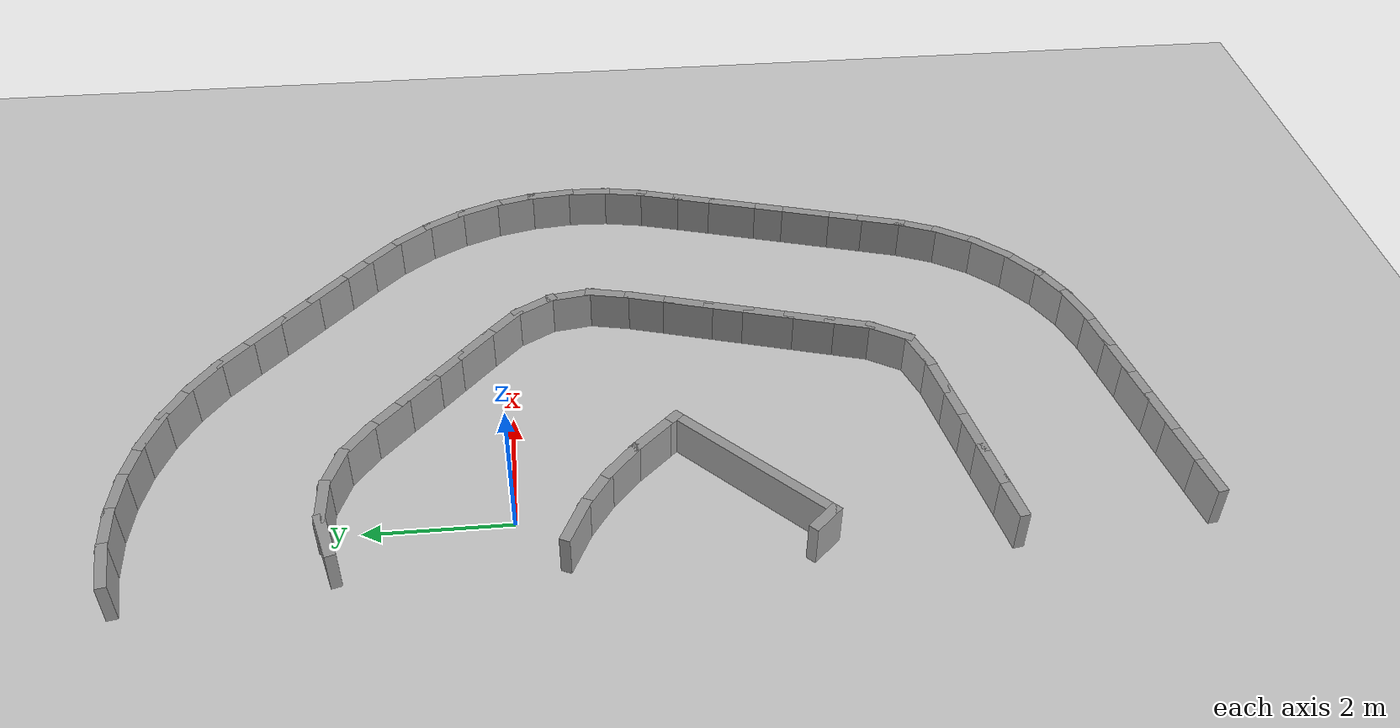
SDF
<sdf version="1.7">
 <world name="default">
  <model name="ground_plane">
   <static>1</static>
   <link name="link">
    <collision name="collision">
     <geometry><plane><normal>0 0 1</normal><size>100 100</size></plane></geometry>
     <surface><friction><ode><mu>100</mu><mu2>50</mu2></ode></friction></surface>
    </collision>
    <visual name="visual">
     <cast_shadows>0</cast_shadows>
     <geometry><plane><normal>0 0 1</normal><size>100 100</size></plane></geometry>
     <material>
      <script><uri>file://media/materials/scripts/gazebo.material</uri><name>Gazebo/Grey</name></script>
     </material>
    </visual>
   </link>
  </model>
  <model name="rand_turn_10">
   <link name="Wall_13">
    <collision name="Wall_13_Collision">
     <geometry><box><size>0.7496 0.1500 0.6000</size></box></geometry>
     <pose>0 0 0.3000 0 -0 0</pose>
    </collision>
    <visual name="Wall_13_Visual">
     <pose>0 0 0.3000 0 -0 0</pose>
     <geometry><box><size>0.7496 0.1500 0.6000</size></box></geometry>
     <material>
      <script><uri>file://media/materials/scripts/gazebo.material</uri><name>Gazebo/Grey</name></script>
      <ambient>1 1 1 1</ambient>
     </material>
    </visual>
    <pose>-0.7616 5.0270 0 0 -0 0.17493</pose>
   </link>
   <link name="Wall_14">
    <collision name="Wall_14_Collision">
     <geometry><box><size>0.7495 0.1500 0.6000</size></box></geometry>
     <pose>0 0 0.3000 0 -0 0</pose>
    </collision>
    <visual name="Wall_14_Visual">
     <pose>0 0 0.3000 0 -0 0</pose>
     <geometry><box><size>0.7495 0.1500 0.6000</size></box></geometry>
     <material>
      <script><uri>file://media/materials/scripts/gazebo.material</uri><name>Gazebo/Grey</name></script>
      <ambient>1 1 1 1</ambient>
     </material>
    </visual>
    <pose>-0.1669 5.0926 0 0 -0 0.04497</pose>
   </link>
   <link name="Wall_15">
    <collision name="Wall_15_Collision">
     <geometry><box><size>0.7495 0.1500 0.6000</size></box></geometry>
     <pose>0 0 0.3000 0 -0 0</pose>
    </collision>
    <visual name="Wall_15_Visual">
     <pose>0 0 0.3000 0 -0 0</pose>
     <geometry><box><size>0.7495 0.1500 0.6000</size></box></geometry>
     <material>
      <script><uri>file://media/materials/scripts/gazebo.material</uri><name>Gazebo/Grey</name></script>
      <ambient>1 1 1 1</ambient>
     </material>
    </visual>
    <pose>0.4313 5.0808 0 0 -0 -0.08451</pose>
   </link>
   <link name="Wall_16">
    <collision name="Wall_16_Collision">
     <geometry><box><size>0.7496 0.1500 0.6000</size></box></geometry>
     <pose>0 0 0.3000 0 -0 0</pose>
    </collision>
    <visual name="Wall_16_Visual">
     <pose>0 0 0.3000 0 -0 0</pose>
     <geometry><box><size>0.7496 0.1500 0.6000</size></box></geometry>
     <material>
      <script><uri>file://media/materials/scripts/gazebo.material</uri><name>Gazebo/Grey</name></script>
      <ambient>1 1 1 1</ambient>
     </material>
    </visual>
    <pose>1.0229 4.9918 0 0 -0 -0.21422</pose>
   </link>
   <link name="Wall_17">
    <collision name="Wall_17_Collision">
     <geometry><box><size>0.7496 0.1500 0.6000</size></box></geometry>
     <pose>0 0 0.3000 0 -0 0</pose>
    </collision>
    <visual name="Wall_17_Visual">
     <pose>0 0 0.3000 0 -0 0</pose>
     <geometry><box><size>0.7496 0.1500 0.6000</size></box></geometry>
     <material>
      <script><uri>file://media/materials/scripts/gazebo.material</uri><name>Gazebo/Grey</name></script>
      <ambient>1 1 1 1</ambient>
     </material>
    </visual>
    <pose>1.5979 4.8265 0 0 -0 -0.34542</pose>
   </link>
   <link name="Wall_18">
    <collision name="Wall_18_Collision">
     <geometry><box><size>0.7495 0.1500 0.6000</size></box></geometry>
     <pose>0 0 0.3000 0 -0 0</pose>
    </collision>
    <visual name="Wall_18_Visual">
     <pose>0 0 0.3000 0 -0 0</pose>
     <geometry><box><size>0.7495 0.1500 0.6000</size></box></geometry>
     <material>
      <script><uri>file://media/materials/scripts/gazebo.material</uri><name>Gazebo/Grey</name></script>
      <ambient>1 1 1 1</ambient>
     </material>
    </visual>
    <pose>2.1466 4.5880 0 0 -0 -0.47489</pose>
   </link>
   <link name="Wall_19">
    <collision name="Wall_19_Collision">
     <geometry><box><size>0.7496 0.1500 0.6000</size></box></geometry>
     <pose>0 0 0.3000 0 -0 0</pose>
    </collision>
    <visual name="Wall_19_Visual">
     <pose>0 0 0.3000 0 -0 0</pose>
     <geometry><box><size>0.7496 0.1500 0.6000</size></box></geometry>
     <material>
      <script><uri>file://media/materials/scripts/gazebo.material</uri><name>Gazebo/Grey</name></script>
      <ambient>1 1 1 1</ambient>
     </material>
    </visual>
    <pose>2.6599 4.2806 0 0 -0 -0.60436</pose>
   </link>
   <link name="Wall_20">
    <collision name="Wall_20_Collision">
     <geometry><box><size>0.7499 0.1500 0.6000</size></box></geometry>
     <pose>0 0 0.3000 0 -0 0</pose>
    </collision>
    <visual name="Wall_20_Visual">
     <pose>0 0 0.3000 0 -0 0</pose>
     <geometry><box><size>0.7499 0.1500 0.6000</size></box></geometry>
     <material>
      <script><uri>file://media/materials/scripts/gazebo.material</uri><name>Gazebo/Grey</name></script>
      <ambient>1 1 1 1</ambient>
     </material>
    </visual>
    <pose>3.1338 3.9145 0 0 -0 -0.71109</pose>
   </link>
   <link name="Wall_21">
    <collision name="Wall_21_Collision">
     <geometry><box><size>0.7500 0.1500 0.6000</size></box></geometry>
     <pose>0 0 0.3000 0 -0 0</pose>
    </collision>
    <visual name="Wall_21_Visual">
     <pose>0 0 0.3000 0 -0 0</pose>
     <geometry><box><size>0.7500 0.1500 0.6000</size></box></geometry>
     <material>
      <script><uri>file://media/materials/scripts/gazebo.material</uri><name>Gazebo/Grey</name></script>
      <ambient>1 1 1 1</ambient>
     </material>
    </visual>
    <pose>3.5865 3.5207 0 0 -0 -0.72078</pose>
   </link>
   <link name="Wall_22">
    <collision name="Wall_22_Collision">
     <geometry><box><size>0.7500 0.1500 0.6000</size></box></geometry>
     <pose>0 0 0.3000 0 -0 0</pose>
    </collision>
    <visual name="Wall_22_Visual">
     <pose>0 0 0.3000 0 -0 0</pose>
     <geometry><box><size>0.7500 0.1500 0.6000</size></box></geometry>
     <material>
      <script><uri>file://media/materials/scripts/gazebo.material</uri><name>Gazebo/Grey</name></script>
      <ambient>1 1 1 1</ambient>
     </material>
    </visual>
    <pose>4.0372 3.1247 0 0 -0 -0.72078</pose>
   </link>
   <link name="Wall_23">
    <collision name="Wall_23_Collision">
     <geometry><box><size>0.7500 0.1500 0.6000</size></box></geometry>
     <pose>0 0 0.3000 0 -0 0</pose>
    </collision>
    <visual name="Wall_23_Visual">
     <pose>0 0 0.3000 0 -0 0</pose>
     <geometry><box><size>0.7500 0.1500 0.6000</size></box></geometry>
     <material>
      <script><uri>file://media/materials/scripts/gazebo.material</uri><name>Gazebo/Grey</name></script>
      <ambient>1 1 1 1</ambient>
     </material>
    </visual>
    <pose>4.4880 2.7287 0 0 -0 -0.72078</pose>
   </link>
   <link name="Wall_24">
    <collision name="Wall_24_Collision">
     <geometry><box><size>0.7500 0.1500 0.6000</size></box></geometry>
     <pose>0 0 0.3000 0 -0 0</pose>
    </collision>
    <visual name="Wall_24_Visual">
     <pose>0 0 0.3000 0 -0 0</pose>
     <geometry><box><size>0.7500 0.1500 0.6000</size></box></geometry>
     <material>
      <script><uri>file://media/materials/scripts/gazebo.material</uri><name>Gazebo/Grey</name></script>
      <ambient>1 1 1 1</ambient>
     </material>
    </visual>
    <pose>4.9388 2.3327 0 0 -0 -0.72078</pose>
   </link>
   <link name="Wall_25">
    <collision name="Wall_25_Collision">
     <geometry><box><size>0.7497 0.1500 0.6000</size></box></geometry>
     <pose>0 0 0.3000 0 -0 0</pose>
    </collision>
    <visual name="Wall_25_Visual">
     <pose>0 0 0.3000 0 -0 0</pose>
     <geometry><box><size>0.7497 0.1500 0.6000</size></box></geometry>
     <material>
      <script><uri>file://media/materials/scripts/gazebo.material</uri><name>Gazebo/Grey</name></script>
      <ambient>1 1 1 1</ambient>
     </material>
    </visual>
    <pose>5.3823 1.9290 0 0 -0 -0.75607</pose>
   </link>
   <link name="Wall_26">
    <collision name="Wall_26_Collision">
     <geometry><box><size>0.7495 0.1500 0.6000</size></box></geometry>
     <pose>0 0 0.3000 0 -0 0</pose>
    </collision>
    <visual name="Wall_26_Visual">
     <pose>0 0 0.3000 0 -0 0</pose>
     <geometry><box><size>0.7495 0.1500 0.6000</size></box></geometry>
     <material>
      <script><uri>file://media/materials/scripts/gazebo.material</uri><name>Gazebo/Grey</name></script>
      <ambient>1 1 1 1</ambient>
     </material>
    </visual>
    <pose>5.7887 1.4901 0 0 -0 -0.89167</pose>
   </link>
   <link name="Wall_27">
    <collision name="Wall_27_Collision">
     <geometry><box><size>0.7495 0.1500 0.6000</size></box></geometry>
     <pose>0 0 0.3000 0 -0 0</pose>
    </collision>
    <visual name="Wall_27_Visual">
     <pose>0 0 0.3000 0 -0 0</pose>
     <geometry><box><size>0.7495 0.1500 0.6000</size></box></geometry>
     <material>
      <script><uri>file://media/materials/scripts/gazebo.material</uri><name>Gazebo/Grey</name></script>
      <ambient>1 1 1 1</ambient>
     </material>
    </visual>
    <pose>6.1300 0.9991 0 0 -0 -1.03518</pose>
   </link>
   <link name="Wall_28">
    <collision name="Wall_28_Collision">
     <geometry><box><size>0.7495 0.1500 0.6000</size></box></geometry>
     <pose>0 0 0.3000 0 -0 0</pose>
    </collision>
    <visual name="Wall_28_Visual">
     <pose>0 0 0.3000 0 -0 0</pose>
     <geometry><box><size>0.7495 0.1500 0.6000</size></box></geometry>
     <material>
      <script><uri>file://media/materials/scripts/gazebo.material</uri><name>Gazebo/Grey</name></script>
      <ambient>1 1 1 1</ambient>
     </material>
    </visual>
    <pose>6.3976 0.4644 0 0 -0 -1.17840</pose>
   </link>
   <link name="Wall_29">
    <collision name="Wall_29_Collision">
     <geometry><box><size>0.7495 0.1500 0.6000</size></box></geometry>
     <pose>0 0 0.3000 0 -0 0</pose>
    </collision>
    <visual name="Wall_29_Visual">
     <pose>0 0 0.3000 0 -0 0</pose>
     <geometry><box><size>0.7495 0.1500 0.6000</size></box></geometry>
     <material>
      <script><uri>file://media/materials/scripts/gazebo.material</uri><name>Gazebo/Grey</name></script>
      <ambient>1 1 1 1</ambient>
     </material>
    </visual>
    <pose>6.5862 -0.1031 0 0 -0 -1.32133</pose>
   </link>
   <link name="Wall_30">
    <collision name="Wall_30_Collision">
     <geometry><box><size>0.7494 0.1500 0.6000</size></box></geometry>
     <pose>0 0 0.3000 0 -0 0</pose>
    </collision>
    <visual name="Wall_30_Visual">
     <pose>0 0 0.3000 0 -0 0</pose>
     <geometry><box><size>0.7494 0.1500 0.6000</size></box></geometry>
     <material>
      <script><uri>file://media/materials/scripts/gazebo.material</uri><name>Gazebo/Grey</name></script>
      <ambient>1 1 1 1</ambient>
     </material>
    </visual>
    <pose>6.6921 -0.6915 0 0 -0 -1.46426</pose>
   </link>
   <link name="Wall_31">
    <collision name="Wall_31_Collision">
     <geometry><box><size>0.7494 0.1500 0.6000</size></box></geometry>
     <pose>0 0 0.3000 0 -0 0</pose>
    </collision>
    <visual name="Wall_31_Visual">
     <pose>0 0 0.3000 0 -0 0</pose>
     <geometry><box><size>0.7494 0.1500 0.6000</size></box></geometry>
     <material>
      <script><uri>file://media/materials/scripts/gazebo.material</uri><name>Gazebo/Grey</name></script>
      <ambient>1 1 1 1</ambient>
     </material>
    </visual>
    <pose>6.7131 -1.2891 0 0 -0 -1.60719</pose>
   </link>
   <link name="Wall_32">
    <collision name="Wall_32_Collision">
     <geometry><box><size>0.7494 0.1500 0.6000</size></box></geometry>
     <pose>0 0 0.3000 0 -0 0</pose>
    </collision>
    <visual name="Wall_32_Visual">
     <pose>0 0 0.3000 0 -0 0</pose>
     <geometry><box><size>0.7494 0.1500 0.6000</size></box></geometry>
     <material>
      <script><uri>file://media/materials/scripts/gazebo.material</uri><name>Gazebo/Grey</name></script>
      <ambient>1 1 1 1</ambient>
     </material>
    </visual>
    <pose>6.6487 -1.8835 0 0 -0 -1.75019</pose>
   </link>
   <link name="Wall_33">
    <collision name="Wall_33_Collision">
     <geometry><box><size>0.7500 0.1500 0.6000</size></box></geometry>
     <pose>0 0 0.3000 0 -0 0</pose>
    </collision>
    <visual name="Wall_33_Visual">
     <pose>0 0 0.3000 0 -0 0</pose>
     <geometry><box><size>0.7500 0.1500 0.6000</size></box></geometry>
     <material>
      <script><uri>file://media/materials/scripts/gazebo.material</uri><name>Gazebo/Grey</name></script>
      <ambient>1 1 1 1</ambient>
     </material>
    </visual>
    <pose>6.5111 -2.4663 0 0 -0 -1.85487</pose>
   </link>
   <link name="Wall_34">
    <collision name="Wall_34_Collision">
     <geometry><box><size>0.7500 0.1500 0.6000</size></box></geometry>
     <pose>0 0 0.3000 0 -0 0</pose>
    </collision>
    <visual name="Wall_34_Visual">
     <pose>0 0 0.3000 0 -0 0</pose>
     <geometry><box><size>0.7500 0.1500 0.6000</size></box></geometry>
     <material>
      <script><uri>file://media/materials/scripts/gazebo.material</uri><name>Gazebo/Grey</name></script>
      <ambient>1 1 1 1</ambient>
     </material>
    </visual>
    <pose>6.3416 -3.0419 0 0 -0 -1.85970</pose>
   </link>
   <link name="Wall_35">
    <collision name="Wall_35_Collision">
     <geometry><box><size>0.7500 0.1500 0.6000</size></box></geometry>
     <pose>0 0 0.3000 0 -0 0</pose>
    </collision>
    <visual name="Wall_35_Visual">
     <pose>0 0 0.3000 0 -0 0</pose>
     <geometry><box><size>0.7500 0.1500 0.6000</size></box></geometry>
     <material>
      <script><uri>file://media/materials/scripts/gazebo.material</uri><name>Gazebo/Grey</name></script>
      <ambient>1 1 1 1</ambient>
     </material>
    </visual>
    <pose>6.1706 -3.6170 0 0 -0 -1.85970</pose>
   </link>
   <link name="Wall_36">
    <collision name="Wall_36_Collision">
     <geometry><box><size>0.7500 0.1500 0.6000</size></box></geometry>
     <pose>0 0 0.3000 0 -0 0</pose>
    </collision>
    <visual name="Wall_36_Visual">
     <pose>0 0 0.3000 0 -0 0</pose>
     <geometry><box><size>0.7500 0.1500 0.6000</size></box></geometry>
     <material>
      <script><uri>file://media/materials/scripts/gazebo.material</uri><name>Gazebo/Grey</name></script>
      <ambient>1 1 1 1</ambient>
     </material>
    </visual>
    <pose>5.9997 -4.1921 0 0 -0 -1.85970</pose>
   </link>
   <link name="Wall_37">
    <collision name="Wall_37_Collision">
     <geometry><box><size>0.7500 0.1500 0.6000</size></box></geometry>
     <pose>0 0 0.3000 0 -0 0</pose>
    </collision>
    <visual name="Wall_37_Visual">
     <pose>0 0 0.3000 0 -0 0</pose>
     <geometry><box><size>0.7500 0.1500 0.6000</size></box></geometry>
     <material>
      <script><uri>file://media/materials/scripts/gazebo.material</uri><name>Gazebo/Grey</name></script>
      <ambient>1 1 1 1</ambient>
     </material>
    </visual>
    <pose>5.8287 -4.7673 0 0 -0 -1.85970</pose>
   </link>
   <link name="Wall_38">
    <collision name="Wall_38_Collision">
     <geometry><box><size>0.7500 0.1500 0.6000</size></box></geometry>
     <pose>0 0 0.3000 0 -0 0</pose>
    </collision>
    <visual name="Wall_38_Visual">
     <pose>0 0 0.3000 0 -0 0</pose>
     <geometry><box><size>0.7500 0.1500 0.6000</size></box></geometry>
     <material>
      <script><uri>file://media/materials/scripts/gazebo.material</uri><name>Gazebo/Grey</name></script>
      <ambient>1 1 1 1</ambient>
     </material>
    </visual>
    <pose>5.6578 -5.3424 0 0 -0 -1.85970</pose>
   </link>
   <link name="Wall_39">
    <collision name="Wall_39_Collision">
     <geometry><box><size>0.7500 0.1500 0.6000</size></box></geometry>
     <pose>0 0 0.3000 0 -0 0</pose>
    </collision>
    <visual name="Wall_39_Visual">
     <pose>0 0 0.3000 0 -0 0</pose>
     <geometry><box><size>0.7500 0.1500 0.6000</size></box></geometry>
     <material>
      <script><uri>file://media/materials/scripts/gazebo.material</uri><name>Gazebo/Grey</name></script>
      <ambient>1 1 1 1</ambient>
     </material>
    </visual>
    <pose>5.4857 -5.9172 0 0 -0 -1.86383</pose>
   </link>
   <link name="Wall_40">
    <collision name="Wall_40_Collision">
     <geometry><box><size>0.7491 0.1500 0.6000</size></box></geometry>
     <pose>0 0 0.3000 0 -0 0</pose>
    </collision>
    <visual name="Wall_40_Visual">
     <pose>0 0 0.3000 0 -0 0</pose>
     <geometry><box><size>0.7491 0.1500 0.6000</size></box></geometry>
     <material>
      <script><uri>file://media/materials/scripts/gazebo.material</uri><name>Gazebo/Grey</name></script>
      <ambient>1 1 1 1</ambient>
     </material>
    </visual>
    <pose>5.2800 -6.4793 0 0 -0 -1.97924</pose>
   </link>
   <link name="Wall_41">
    <collision name="Wall_41_Collision">
     <geometry><box><size>0.7492 0.1500 0.6000</size></box></geometry>
     <pose>0 0 0.3000 0 -0 0</pose>
    </collision>
    <visual name="Wall_41_Visual">
     <pose>0 0 0.3000 0 -0 0</pose>
     <geometry><box><size>0.7492 0.1500 0.6000</size></box></geometry>
     <material>
      <script><uri>file://media/materials/scripts/gazebo.material</uri><name>Gazebo/Grey</name></script>
      <ambient>1 1 1 1</ambient>
     </material>
    </visual>
    <pose>4.9963 -7.0044 0 0 -0 -2.15323</pose>
   </link>
   <link name="Wall_42">
    <collision name="Wall_42_Collision">
     <geometry><box><size>0.7492 0.1500 0.6000</size></box></geometry>
     <pose>0 0 0.3000 0 -0 0</pose>
    </collision>
    <visual name="Wall_42_Visual">
     <pose>0 0 0.3000 0 -0 0</pose>
     <geometry><box><size>0.7492 0.1500 0.6000</size></box></geometry>
     <material>
      <script><uri>file://media/materials/scripts/gazebo.material</uri><name>Gazebo/Grey</name></script>
      <ambient>1 1 1 1</ambient>
     </material>
    </visual>
    <pose>4.6249 -7.4716 0 0 -0 -2.33162</pose>
   </link>
   <link name="Wall_43">
    <collision name="Wall_43_Collision">
     <geometry><box><size>0.7491 0.1500 0.6000</size></box></geometry>
     <pose>0 0 0.3000 0 -0 0</pose>
    </collision>
    <visual name="Wall_43_Visual">
     <pose>0 0 0.3000 0 -0 0</pose>
     <geometry><box><size>0.7491 0.1500 0.6000</size></box></geometry>
     <material>
      <script><uri>file://media/materials/scripts/gazebo.material</uri><name>Gazebo/Grey</name></script>
      <ambient>1 1 1 1</ambient>
     </material>
    </visual>
    <pose>4.1773 -7.8665 0 0 -0 -2.50584</pose>
   </link>
   <link name="Wall_44">
    <collision name="Wall_44_Collision">
     <geometry><box><size>0.7492 0.1500 0.6000</size></box></geometry>
     <pose>0 0 0.3000 0 -0 0</pose>
    </collision>
    <visual name="Wall_44_Visual">
     <pose>0 0 0.3000 0 -0 0</pose>
     <geometry><box><size>0.7492 0.1500 0.6000</size></box></geometry>
     <material>
      <script><uri>file://media/materials/scripts/gazebo.material</uri><name>Gazebo/Grey</name></script>
      <ambient>1 1 1 1</ambient>
     </material>
    </visual>
    <pose>3.6680 -8.1778 0 0 -0 -2.68001</pose>
   </link>
   <link name="Wall_45">
    <collision name="Wall_45_Collision">
     <geometry><box><size>0.7492 0.1500 0.6000</size></box></geometry>
     <pose>0 0 0.3000 0 -0 0</pose>
    </collision>
    <visual name="Wall_45_Visual">
     <pose>0 0 0.3000 0 -0 0</pose>
     <geometry><box><size>0.7492 0.1500 0.6000</size></box></geometry>
     <material>
      <script><uri>file://media/materials/scripts/gazebo.material</uri><name>Gazebo/Grey</name></script>
      <ambient>1 1 1 1</ambient>
     </material>
    </visual>
    <pose>3.1121 -8.3951 0 0 -0 -2.85792</pose>
   </link>
   <link name="Wall_46">
    <collision name="Wall_46_Collision">
     <geometry><box><size>0.7500 0.1500 0.6000</size></box></geometry>
     <pose>0 0 0.3000 0 -0 0</pose>
    </collision>
    <visual name="Wall_46_Visual">
     <pose>0 0 0.3000 0 -0 0</pose>
     <geometry><box><size>0.7500 0.1500 0.6000</size></box></geometry>
     <material>
      <script><uri>file://media/materials/scripts/gazebo.material</uri><name>Gazebo/Grey</name></script>
      <ambient>1 1 1 1</ambient>
     </material>
    </visual>
    <pose>2.5292 -8.5320 0 0 -0 -2.96390</pose>
   </link>
   <link name="Wall_47">
    <collision name="Wall_47_Collision">
     <geometry><box><size>0.7500 0.1500 0.6000</size></box></geometry>
     <pose>0 0 0.3000 0 -0 0</pose>
    </collision>
    <visual name="Wall_47_Visual">
     <pose>0 0 0.3000 0 -0 0</pose>
     <geometry><box><size>0.7500 0.1500 0.6000</size></box></geometry>
     <material>
      <script><uri>file://media/materials/scripts/gazebo.material</uri><name>Gazebo/Grey</name></script>
      <ambient>1 1 1 1</ambient>
     </material>
    </visual>
    <pose>1.9385 -8.6374 0 0 -0 -2.96626</pose>
   </link>
   <link name="Wall_48">
    <collision name="Wall_48_Collision">
     <geometry><box><size>0.7500 0.1500 0.6000</size></box></geometry>
     <pose>0 0 0.3000 0 -0 0</pose>
    </collision>
    <visual name="Wall_48_Visual">
     <pose>0 0 0.3000 0 -0 0</pose>
     <geometry><box><size>0.7500 0.1500 0.6000</size></box></geometry>
     <material>
      <script><uri>file://media/materials/scripts/gazebo.material</uri><name>Gazebo/Grey</name></script>
      <ambient>1 1 1 1</ambient>
     </material>
    </visual>
    <pose>1.3477 -8.7420 0 0 -0 -2.96626</pose>
   </link>
   <link name="Wall_49">
    <collision name="Wall_49_Collision">
     <geometry><box><size>0.7500 0.1500 0.6000</size></box></geometry>
     <pose>0 0 0.3000 0 -0 0</pose>
    </collision>
    <visual name="Wall_49_Visual">
     <pose>0 0 0.3000 0 -0 0</pose>
     <geometry><box><size>0.7500 0.1500 0.6000</size></box></geometry>
     <material>
      <script><uri>file://media/materials/scripts/gazebo.material</uri><name>Gazebo/Grey</name></script>
      <ambient>1 1 1 1</ambient>
     </material>
    </visual>
    <pose>0.7569 -8.8467 0 0 -0 -2.96626</pose>
   </link>
   <link name="Wall_50">
    <collision name="Wall_50_Collision">
     <geometry><box><size>0.7500 0.1500 0.6000</size></box></geometry>
     <pose>0 0 0.3000 0 -0 0</pose>
    </collision>
    <visual name="Wall_50_Visual">
     <pose>0 0 0.3000 0 -0 0</pose>
     <geometry><box><size>0.7500 0.1500 0.6000</size></box></geometry>
     <material>
      <script><uri>file://media/materials/scripts/gazebo.material</uri><name>Gazebo/Grey</name></script>
      <ambient>1 1 1 1</ambient>
     </material>
    </visual>
    <pose>0.1661 -8.9513 0 0 -0 -2.96626</pose>
   </link>
   <link name="Wall_51">
    <collision name="Wall_51_Collision">
     <geometry><box><size>0.7500 0.1500 0.6000</size></box></geometry>
     <pose>0 0 0.3000 0 -0 0</pose>
    </collision>
    <visual name="Wall_51_Visual">
     <pose>0 0 0.3000 0 -0 0</pose>
     <geometry><box><size>0.7500 0.1500 0.6000</size></box></geometry>
     <material>
      <script><uri>file://media/materials/scripts/gazebo.material</uri><name>Gazebo/Grey</name></script>
      <ambient>1 1 1 1</ambient>
     </material>
    </visual>
    <pose>-0.4247 -9.0560 0 0 -0 -2.96626</pose>
   </link>
   <link name="Wall_80">
    <collision name="Wall_80_Collision">
     <geometry><box><size>0.7495 0.1500 0.6000</size></box></geometry>
     <pose>0 0 0.3000 0 -0 0</pose>
    </collision>
    <visual name="Wall_80_Visual">
     <pose>0 0 0.3000 0 -0 0</pose>
     <geometry><box><size>0.7495 0.1500 0.6000</size></box></geometry>
     <material>
      <script><uri>file://media/materials/scripts/gazebo.material</uri><name>Gazebo/Grey</name></script>
      <ambient>1 1 1 1</ambient>
     </material>
    </visual>
    <pose>-0.5291 -0.7930 0 0 -0 -0.43776</pose>
   </link>
   <link name="Wall_81">
    <collision name="Wall_81_Collision">
     <geometry><box><size>0.7495 0.1500 0.6000</size></box></geometry>
     <pose>0 0 0.3000 0 -0 0</pose>
    </collision>
    <visual name="Wall_81_Visual">
     <pose>0 0 0.3000 0 -0 0</pose>
     <geometry><box><size>0.7495 0.1500 0.6000</size></box></geometry>
     <material>
      <script><uri>file://media/materials/scripts/gazebo.material</uri><name>Gazebo/Grey</name></script>
      <ambient>1 1 1 1</ambient>
     </material>
    </visual>
    <pose>-0.0065 -1.0837 0 0 -0 -0.57742</pose>
   </link>
   <link name="Wall_82">
    <collision name="Wall_82_Collision">
     <geometry><box><size>0.7495 0.1500 0.6000</size></box></geometry>
     <pose>0 0 0.3000 0 -0 0</pose>
    </collision>
    <visual name="Wall_82_Visual">
     <pose>0 0 0.3000 0 -0 0</pose>
     <geometry><box><size>0.7495 0.1500 0.6000</size></box></geometry>
     <material>
      <script><uri>file://media/materials/scripts/gazebo.material</uri><name>Gazebo/Grey</name></script>
      <ambient>1 1 1 1</ambient>
     </material>
    </visual>
    <pose>0.4706 -1.4443 0 0 -0 -0.71708</pose>
   </link>
   <link name="Wall_83">
    <collision name="Wall_83_Collision">
     <geometry><box><size>0.7500 0.1500 0.6000</size></box></geometry>
     <pose>0 0 0.3000 0 -0 0</pose>
    </collision>
    <visual name="Wall_83_Visual">
     <pose>0 0 0.3000 0 -0 0</pose>
     <geometry><box><size>0.7500 0.1500 0.6000</size></box></geometry>
     <material>
      <script><uri>file://media/materials/scripts/gazebo.material</uri><name>Gazebo/Grey</name></script>
      <ambient>1 1 1 1</ambient>
     </material>
    </visual>
    <pose>0.9045 -1.8575 0 0 -0 -0.80478</pose>
   </link>
   <link name="Wall_84">
    <collision name="Wall_84_Collision">
     <geometry><box><size>0.3767 0.1500 0.6000</size></box></geometry>
     <pose>0 0 0.3000 0 -0 0</pose>
    </collision>
    <visual name="Wall_84_Visual">
     <pose>0 0 0.3000 0 -0 0</pose>
     <geometry><box><size>0.3767 0.1500 0.6000</size></box></geometry>
     <material>
      <script><uri>file://media/materials/scripts/gazebo.material</uri><name>Gazebo/Grey</name></script>
      <ambient>1 1 1 1</ambient>
     </material>
    </visual>
    <pose>1.1910 -2.1554 0 0 -0 -0.80534</pose>
   </link>
   <link name="Wall_100">
    <collision name="Wall_100_Collision">
     <geometry><box><size>0.7476 0.1500 0.6000</size></box></geometry>
     <pose>0 0 0.3000 0 -0 0</pose>
    </collision>
    <visual name="Wall_100_Visual">
     <pose>0 0 0.3000 0 -0 0</pose>
     <geometry><box><size>0.7476 0.1500 0.6000</size></box></geometry>
     <material>
      <script><uri>file://media/materials/scripts/gazebo.material</uri><name>Gazebo/Grey</name></script>
      <ambient>1 1 1 1</ambient>
     </material>
    </visual>
    <pose>-0.5018 2.3538 0 0 -0 0.28403</pose>
   </link>
   <link name="Wall_101">
    <collision name="Wall_101_Collision">
     <geometry><box><size>0.7476 0.1500 0.6000</size></box></geometry>
     <pose>0 0 0.3000 0 -0 0</pose>
    </collision>
    <visual name="Wall_101_Visual">
     <pose>0 0 0.3000 0 -0 0</pose>
     <geometry><box><size>0.7476 0.1500 0.6000</size></box></geometry>
     <material>
      <script><uri>file://media/materials/scripts/gazebo.material</uri><name>Gazebo/Grey</name></script>
      <ambient>1 1 1 1</ambient>
     </material>
    </visual>
    <pose>0.0837 2.4311 0 0 -0 -0.02176</pose>
   </link>
   <link name="Wall_102">
    <collision name="Wall_102_Collision">
     <geometry><box><size>0.7476 0.1500 0.6000</size></box></geometry>
     <pose>0 0 0.3000 0 -0 0</pose>
    </collision>
    <visual name="Wall_102_Visual">
     <pose>0 0 0.3000 0 -0 0</pose>
     <geometry><box><size>0.7476 0.1500 0.6000</size></box></geometry>
     <material>
      <script><uri>file://media/materials/scripts/gazebo.material</uri><name>Gazebo/Grey</name></script>
      <ambient>1 1 1 1</ambient>
     </material>
    </visual>
    <pose>0.6654 2.3284 0 0 -0 -0.32755</pose>
   </link>
   <link name="Wall_103">
    <collision name="Wall_103_Collision">
     <geometry><box><size>0.7481 0.1500 0.6000</size></box></geometry>
     <pose>0 0 0.3000 0 -0 0</pose>
    </collision>
    <visual name="Wall_103_Visual">
     <pose>0 0 0.3000 0 -0 0</pose>
     <geometry><box><size>0.7481 0.1500 0.6000</size></box></geometry>
     <material>
      <script><uri>file://media/materials/scripts/gazebo.material</uri><name>Gazebo/Grey</name></script>
      <ambient>1 1 1 1</ambient>
     </material>
    </visual>
    <pose>1.1905 2.0569 0 0 -0 -0.62676</pose>
   </link>
   <link name="Wall_104">
    <collision name="Wall_104_Collision">
     <geometry><box><size>0.7500 0.1500 0.6000</size></box></geometry>
     <pose>0 0 0.3000 0 -0 0</pose>
    </collision>
    <visual name="Wall_104_Visual">
     <pose>0 0 0.3000 0 -0 0</pose>
     <geometry><box><size>0.7500 0.1500 0.6000</size></box></geometry>
     <material>
      <script><uri>file://media/materials/scripts/gazebo.material</uri><name>Gazebo/Grey</name></script>
      <ambient>1 1 1 1</ambient>
     </material>
    </visual>
    <pose>1.6581 1.6835 0 0 -0 -0.72078</pose>
   </link>
   <link name="Wall_105">
    <collision name="Wall_105_Collision">
     <geometry><box><size>0.7500 0.1500 0.6000</size></box></geometry>
     <pose>0 0 0.3000 0 -0 0</pose>
    </collision>
    <visual name="Wall_105_Visual">
     <pose>0 0 0.3000 0 -0 0</pose>
     <geometry><box><size>0.7500 0.1500 0.6000</size></box></geometry>
     <material>
      <script><uri>file://media/materials/scripts/gazebo.material</uri><name>Gazebo/Grey</name></script>
      <ambient>1 1 1 1</ambient>
     </material>
    </visual>
    <pose>2.1089 1.2875 0 0 -0 -0.72078</pose>
   </link>
   <link name="Wall_106">
    <collision name="Wall_106_Collision">
     <geometry><box><size>0.7500 0.1500 0.6000</size></box></geometry>
     <pose>0 0 0.3000 0 -0 0</pose>
    </collision>
    <visual name="Wall_106_Visual">
     <pose>0 0 0.3000 0 -0 0</pose>
     <geometry><box><size>0.7500 0.1500 0.6000</size></box></geometry>
     <material>
      <script><uri>file://media/materials/scripts/gazebo.material</uri><name>Gazebo/Grey</name></script>
      <ambient>1 1 1 1</ambient>
     </material>
    </visual>
    <pose>2.5597 0.8916 0 0 -0 -0.72078</pose>
   </link>
   <link name="Wall_107">
    <collision name="Wall_107_Collision">
     <geometry><box><size>0.7500 0.1500 0.6000</size></box></geometry>
     <pose>0 0 0.3000 0 -0 0</pose>
    </collision>
    <visual name="Wall_107_Visual">
     <pose>0 0 0.3000 0 -0 0</pose>
     <geometry><box><size>0.7500 0.1500 0.6000</size></box></geometry>
     <material>
      <script><uri>file://media/materials/scripts/gazebo.material</uri><name>Gazebo/Grey</name></script>
      <ambient>1 1 1 1</ambient>
     </material>
    </visual>
    <pose>3.0104 0.4956 0 0 -0 -0.72078</pose>
   </link>
   <link name="Wall_108">
    <collision name="Wall_108_Collision">
     <geometry><box><size>0.7497 0.1500 0.6000</size></box></geometry>
     <pose>0 0 0.3000 0 -0 0</pose>
    </collision>
    <visual name="Wall_108_Visual">
     <pose>0 0 0.3000 0 -0 0</pose>
     <geometry><box><size>0.7497 0.1500 0.6000</size></box></geometry>
     <material>
      <script><uri>file://media/materials/scripts/gazebo.material</uri><name>Gazebo/Grey</name></script>
      <ambient>1 1 1 1</ambient>
     </material>
    </visual>
    <pose>3.4574 0.0956 0 0 -0 -0.73907</pose>
   </link>
   <link name="Wall_109">
    <collision name="Wall_109_Collision">
     <geometry><box><size>0.7462 0.1500 0.6000</size></box></geometry>
     <pose>0 0 0.3000 0 -0 0</pose>
    </collision>
    <visual name="Wall_109_Visual">
     <pose>0 0 0.3000 0 -0 0</pose>
     <geometry><box><size>0.7462 0.1500 0.6000</size></box></geometry>
     <material>
      <script><uri>file://media/materials/scripts/gazebo.material</uri><name>Gazebo/Grey</name></script>
      <ambient>1 1 1 1</ambient>
     </material>
    </visual>
    <pose>3.8316 -0.3624 0 0 -0 -1.03339</pose>
   </link>
   <link name="Wall_110">
    <collision name="Wall_110_Collision">
     <geometry><box><size>0.7462 0.1500 0.6000</size></box></geometry>
     <pose>0 0 0.3000 0 -0 0</pose>
    </collision>
    <visual name="Wall_110_Visual">
     <pose>0 0 0.3000 0 -0 0</pose>
     <geometry><box><size>0.7462 0.1500 0.6000</size></box></geometry>
     <material>
      <script><uri>file://media/materials/scripts/gazebo.material</uri><name>Gazebo/Grey</name></script>
      <ambient>1 1 1 1</ambient>
     </material>
    </visual>
    <pose>4.0283 -0.9133 0 0 -0 -1.42229</pose>
   </link>
   <link name="Wall_111">
    <collision name="Wall_111_Collision">
     <geometry><box><size>0.7480 0.1500 0.6000</size></box></geometry>
     <pose>0 0 0.3000 0 -0 0</pose>
    </collision>
    <visual name="Wall_111_Visual">
     <pose>0 0 0.3000 0 -0 0</pose>
     <geometry><box><size>0.7480 0.1500 0.6000</size></box></geometry>
     <material>
      <script><uri>file://media/materials/scripts/gazebo.material</uri><name>Gazebo/Grey</name></script>
      <ambient>1 1 1 1</ambient>
     </material>
    </visual>
    <pose>4.0089 -1.5003 0 0 -0 -1.78495</pose>
   </link>
   <link name="Wall_112">
    <collision name="Wall_112_Collision">
     <geometry><box><size>0.7500 0.1500 0.6000</size></box></geometry>
     <pose>0 0 0.3000 0 -0 0</pose>
    </collision>
    <visual name="Wall_112_Visual">
     <pose>0 0 0.3000 0 -0 0</pose>
     <geometry><box><size>0.7500 0.1500 0.6000</size></box></geometry>
     <material>
      <script><uri>file://media/materials/scripts/gazebo.material</uri><name>Gazebo/Grey</name></script>
      <ambient>1 1 1 1</ambient>
     </material>
    </visual>
    <pose>3.8599 -2.0800 0 0 -0 -1.85970</pose>
   </link>
   <link name="Wall_113">
    <collision name="Wall_113_Collision">
     <geometry><box><size>0.7500 0.1500 0.6000</size></box></geometry>
     <pose>0 0 0.3000 0 -0 0</pose>
    </collision>
    <visual name="Wall_113_Visual">
     <pose>0 0 0.3000 0 -0 0</pose>
     <geometry><box><size>0.7500 0.1500 0.6000</size></box></geometry>
     <material>
      <script><uri>file://media/materials/scripts/gazebo.material</uri><name>Gazebo/Grey</name></script>
      <ambient>1 1 1 1</ambient>
     </material>
    </visual>
    <pose>3.6889 -2.6551 0 0 -0 -1.85970</pose>
   </link>
   <link name="Wall_114">
    <collision name="Wall_114_Collision">
     <geometry><box><size>0.7500 0.1500 0.6000</size></box></geometry>
     <pose>0 0 0.3000 0 -0 0</pose>
    </collision>
    <visual name="Wall_114_Visual">
     <pose>0 0 0.3000 0 -0 0</pose>
     <geometry><box><size>0.7500 0.1500 0.6000</size></box></geometry>
     <material>
      <script><uri>file://media/materials/scripts/gazebo.material</uri><name>Gazebo/Grey</name></script>
      <ambient>1 1 1 1</ambient>
     </material>
    </visual>
    <pose>3.5180 -3.2302 0 0 -0 -1.85970</pose>
   </link>
   <link name="Wall_115">
    <collision name="Wall_115_Collision">
     <geometry><box><size>0.7500 0.1500 0.6000</size></box></geometry>
     <pose>0 0 0.3000 0 -0 0</pose>
    </collision>
    <visual name="Wall_115_Visual">
     <pose>0 0 0.3000 0 -0 0</pose>
     <geometry><box><size>0.7500 0.1500 0.6000</size></box></geometry>
     <material>
      <script><uri>file://media/materials/scripts/gazebo.material</uri><name>Gazebo/Grey</name></script>
      <ambient>1 1 1 1</ambient>
     </material>
    </visual>
    <pose>3.3470 -3.8054 0 0 -0 -1.85970</pose>
   </link>
   <link name="Wall_116">
    <collision name="Wall_116_Collision">
     <geometry><box><size>0.7500 0.1500 0.6000</size></box></geometry>
     <pose>0 0 0.3000 0 -0 0</pose>
    </collision>
    <visual name="Wall_116_Visual">
     <pose>0 0 0.3000 0 -0 0</pose>
     <geometry><box><size>0.7500 0.1500 0.6000</size></box></geometry>
     <material>
      <script><uri>file://media/materials/scripts/gazebo.material</uri><name>Gazebo/Grey</name></script>
      <ambient>1 1 1 1</ambient>
     </material>
    </visual>
    <pose>3.1761 -4.3805 0 0 -0 -1.85970</pose>
   </link>
   <link name="Wall_117">
    <collision name="Wall_117_Collision">
     <geometry><box><size>0.7500 0.1500 0.6000</size></box></geometry>
     <pose>0 0 0.3000 0 -0 0</pose>
    </collision>
    <visual name="Wall_117_Visual">
     <pose>0 0 0.3000 0 -0 0</pose>
     <geometry><box><size>0.7500 0.1500 0.6000</size></box></geometry>
     <material>
      <script><uri>file://media/materials/scripts/gazebo.material</uri><name>Gazebo/Grey</name></script>
      <ambient>1 1 1 1</ambient>
     </material>
    </visual>
    <pose>3.0052 -4.9556 0 0 -0 -1.85970</pose>
   </link>
   <link name="Wall_118">
    <collision name="Wall_118_Collision">
     <geometry><box><size>0.7369 0.1500 0.6000</size></box></geometry>
     <pose>0 0 0.3000 0 -0 0</pose>
    </collision>
    <visual name="Wall_118_Visual">
     <pose>0 0 0.3000 0 -0 0</pose>
     <geometry><box><size>0.7369 0.1500 0.6000</size></box></geometry>
     <material>
      <script><uri>file://media/materials/scripts/gazebo.material</uri><name>Gazebo/Grey</name></script>
      <ambient>1 1 1 1</ambient>
     </material>
    </visual>
    <pose>2.7653 -5.4928 0 0 -0 -2.12456</pose>
   </link>
   <link name="Wall_119">
    <collision name="Wall_119_Collision">
     <geometry><box><size>0.7430 0.1500 0.6000</size></box></geometry>
     <pose>0 0 0.3000 0 -0 0</pose>
    </collision>
    <visual name="Wall_119_Visual">
     <pose>0 0 0.3000 0 -0 0</pose>
     <geometry><box><size>0.7430 0.1500 0.6000</size></box></geometry>
     <material>
      <script><uri>file://media/materials/scripts/gazebo.material</uri><name>Gazebo/Grey</name></script>
      <ambient>1 1 1 1</ambient>
     </material>
    </visual>
    <pose>2.3288 -5.8332 0 0 -0 -2.83039</pose>
   </link>
   <link name="Wall_120">
    <collision name="Wall_120_Collision">
     <geometry><box><size>0.7500 0.1500 0.6000</size></box></geometry>
     <pose>0 0 0.3000 0 -0 0</pose>
    </collision>
    <visual name="Wall_120_Visual">
     <pose>0 0 0.3000 0 -0 0</pose>
     <geometry><box><size>0.7500 0.1500 0.6000</size></box></geometry>
     <material>
      <script><uri>file://media/materials/scripts/gazebo.material</uri><name>Gazebo/Grey</name></script>
      <ambient>1 1 1 1</ambient>
     </material>
    </visual>
    <pose>1.7511 -5.9763 0 0 -0 -2.96626</pose>
   </link>
   <link name="Wall_121">
    <collision name="Wall_121_Collision">
     <geometry><box><size>0.7500 0.1500 0.6000</size></box></geometry>
     <pose>0 0 0.3000 0 -0 0</pose>
    </collision>
    <visual name="Wall_121_Visual">
     <pose>0 0 0.3000 0 -0 0</pose>
     <geometry><box><size>0.7500 0.1500 0.6000</size></box></geometry>
     <material>
      <script><uri>file://media/materials/scripts/gazebo.material</uri><name>Gazebo/Grey</name></script>
      <ambient>1 1 1 1</ambient>
     </material>
    </visual>
    <pose>1.1603 -6.0810 0 0 -0 -2.96626</pose>
   </link>
   <link name="Wall_122">
    <collision name="Wall_122_Collision">
     <geometry><box><size>0.7500 0.1500 0.6000</size></box></geometry>
     <pose>0 0 0.3000 0 -0 0</pose>
    </collision>
    <visual name="Wall_122_Visual">
     <pose>0 0 0.3000 0 -0 0</pose>
     <geometry><box><size>0.7500 0.1500 0.6000</size></box></geometry>
     <material>
      <script><uri>file://media/materials/scripts/gazebo.material</uri><name>Gazebo/Grey</name></script>
      <ambient>1 1 1 1</ambient>
     </material>
    </visual>
    <pose>0.5695 -6.1857 0 0 -0 -2.96626</pose>
   </link>
   <link name="Wall_123">
    <collision name="Wall_123_Collision">
     <geometry><box><size>0.7500 0.1500 0.6000</size></box></geometry>
     <pose>0 0 0.3000 0 -0 0</pose>
    </collision>
    <visual name="Wall_123_Visual">
     <pose>0 0 0.3000 0 -0 0</pose>
     <geometry><box><size>0.7500 0.1500 0.6000</size></box></geometry>
     <material>
      <script><uri>file://media/materials/scripts/gazebo.material</uri><name>Gazebo/Grey</name></script>
      <ambient>1 1 1 1</ambient>
     </material>
    </visual>
    <pose>-0.0213 -6.2903 0 0 -0 -2.96626</pose>
   </link>
   <link name="Wall_124">
    <collision name="Wall_124_Collision">
     <geometry><box><size>0.7500 0.1500 0.6000</size></box></geometry>
     <pose>0 0 0.3000 0 -0 0</pose>
    </collision>
    <visual name="Wall_124_Visual">
     <pose>0 0 0.3000 0 -0 0</pose>
     <geometry><box><size>0.7500 0.1500 0.6000</size></box></geometry>
     <material>
      <script><uri>file://media/materials/scripts/gazebo.material</uri><name>Gazebo/Grey</name></script>
      <ambient>1 1 1 1</ambient>
     </material>
    </visual>
    <pose>-0.6121 -6.3950 0 0 -0 -2.96626</pose>
   </link>
   <link name="Wall_139">
    <collision name="Wall_139_Collision">
     <geometry><box><size>0.5209 0.1500 0.6000</size></box></geometry>
     <pose>0 0 0.3000 0 -0 0</pose>
    </collision>
    <visual name="Wall_139_Visual">
     <pose>0 0 0.3000 0 -0 0</pose>
     <geometry><box><size>0.5209 0.1500 0.6000</size></box></geometry>
     <material>
      <script><uri>file://media/materials/scripts/gazebo.material</uri><name>Gazebo/Grey</name></script>
      <ambient>1 1 1 1</ambient>
     </material>
    </visual>
    <pose>-0.7719 -3.9415 0 0 -0 -0.80534</pose>
   </link>
   <link name="Wall_141">
    <collision name="Wall_141_Collision">
     <geometry><box><size>2.8029 0.1500 0.6000</size></box></geometry>
     <pose>0 0 0.3000 0 -0 0</pose>
    </collision>
    <visual name="Wall_141_Visual">
     <pose>0 0 0.3000 0 -0 0</pose>
     <geometry><box><size>2.8029 0.1500 0.6000</size></box></geometry>
     <material>
      <script><uri>file://media/materials/scripts/gazebo.material</uri><name>Gazebo/Grey</name></script>
      <ambient>1 1 1 1</ambient>
     </material>
    </visual>
    <pose>0.3131 -3.1562 0 0 -0 -2.37613</pose>
   </link>
   <static>1</static>
  </model>
 </world>
</sdf>
